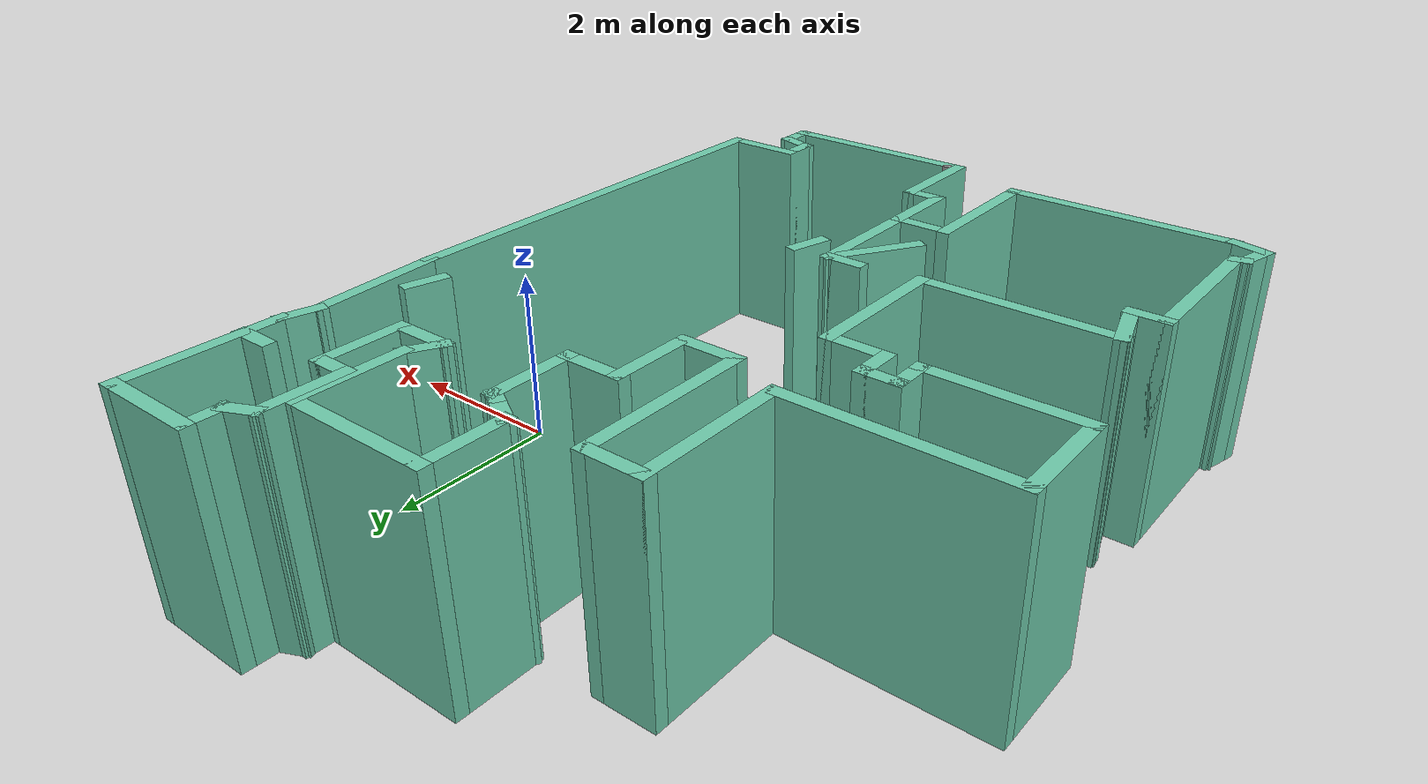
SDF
<?xml version='1.0'?>
<sdf version='1.6'>
  <model name='map_20'>
    <pose frame=''>-3.13956 -0.252237 0 0 -0 0</pose>
    <link name='Wall_102'>
      <collision name='Wall_102_Collision'>
        <geometry>
          <box>
            <size>1.5 0.15 2.5</size>
          </box>
        </geometry>
        <pose frame=''>0 0 1.25 0 -0 0</pose>
      </collision>
      <visual name='Wall_102_Visual'>
        <pose frame=''>0 0 1.25 0 -0 0</pose>
        <geometry>
          <box>
            <size>1.5 0.15 2.5</size>
          </box>
        </geometry>
        <material>
          <script>
            <uri>file://media/materials/scripts/gazebo.material</uri>
            <name>Gazebo/Grey</name>
          </script>
          <ambient>0.435294 0.796078 0.67451 1</ambient>
        </material>
        <meta>
          <layer>0</layer>
        </meta>
      </visual>
      <pose frame=''>0.194438 -1.98873 0 0 -0 1.5708</pose>
    </link>
    <link name='Wall_103'>
      <collision name='Wall_103_Collision'>
        <geometry>
          <box>
            <size>0.5 0.15 2.5</size>
          </box>
        </geometry>
        <pose frame=''>0 0 1.25 0 -0 0</pose>
      </collision>
      <visual name='Wall_103_Visual'>
        <pose frame=''>0 0 1.25 0 -0 0</pose>
        <geometry>
          <box>
            <size>0.5 0.15 2.5</size>
          </box>
        </geometry>
        <material>
          <script>
            <uri>file://media/materials/scripts/gazebo.material</uri>
            <name>Gazebo/Grey</name>
          </script>
          <ambient>0.435294 0.796078 0.67451 1</ambient>
        </material>
        <meta>
          <layer>0</layer>
        </meta>
      </visual>
      <pose frame=''>0.019438 -1.31373 0 0 -0 3.14159</pose>
    </link>
    <link name='Wall_105'>
      <collision name='Wall_105_Collision'>
        <geometry>
          <box>
            <size>1.15084 0.15 2.5</size>
          </box>
        </geometry>
        <pose frame=''>0 0 1.25 0 -0 0</pose>
      </collision>
      <visual name='Wall_105_Visual'>
        <pose frame=''>0 0 1.25 0 -0 0</pose>
        <geometry>
          <box>
            <size>1.15084 0.15 2.5</size>
          </box>
        </geometry>
        <material>
          <script>
            <uri>file://media/materials/scripts/gazebo.material</uri>
            <name>Gazebo/Grey</name>
          </script>
          <ambient>0.435294 0.796078 0.67451 1</ambient>
        </material>
        <meta>
          <layer>0</layer>
        </meta>
      </visual>
      <pose frame=''>-0.077294 -1.73395 0 0 -0 0.996783</pose>
    </link>
    <link name='Wall_107'>
      <collision name='Wall_107_Collision'>
        <geometry>
          <box>
            <size>0.5 0.15 2.5</size>
          </box>
        </geometry>
        <pose frame=''>0 0 1.25 0 -0 0</pose>
      </collision>
      <visual name='Wall_107_Visual'>
        <pose frame=''>0 0 1.25 0 -0 0</pose>
        <geometry>
          <box>
            <size>0.5 0.15 2.5</size>
          </box>
        </geometry>
        <material>
          <script>
            <uri>file://media/materials/scripts/gazebo.material</uri>
            <name>Gazebo/Grey</name>
          </script>
          <ambient>0.435294 0.796078 0.67451 1</ambient>
        </material>
        <meta>
          <layer>0</layer>
        </meta>
      </visual>
      <pose frame=''>2.99723 1.66149 0 0 -0 -1.8326</pose>
    </link>
    <link name='Wall_109'>
      <collision name='Wall_109_Collision'>
        <geometry>
          <box>
            <size>0.5 0.15 2.5</size>
          </box>
        </geometry>
        <pose frame=''>0 0 1.25 0 -0 0</pose>
      </collision>
      <visual name='Wall_109_Visual'>
        <pose frame=''>0 0 1.25 0 -0 0</pose>
        <geometry>
          <box>
            <size>0.5 0.15 2.5</size>
          </box>
        </geometry>
        <material>
          <script>
            <uri>file://media/materials/scripts/gazebo.material</uri>
            <name>Gazebo/Grey</name>
          </script>
          <ambient>0.435294 0.796078 0.67451 1</ambient>
        </material>
        <meta>
          <layer>0</layer>
        </meta>
      </visual>
      <pose frame=''>0.57259 -1.46289 0 0 -0 -1.8326</pose>
    </link>
    <link name='Wall_13'>
      <collision name='Wall_13_Collision'>
        <geometry>
          <box>
            <size>0.5 0.15 2.5</size>
          </box>
        </geometry>
        <pose frame=''>0 0 1.25 0 -0 0</pose>
      </collision>
      <visual name='Wall_13_Visual'>
        <pose frame=''>0 0 1.25 0 -0 0</pose>
        <geometry>
          <box>
            <size>0.5 0.15 2.5</size>
          </box>
        </geometry>
        <material>
          <script>
            <uri>file://media/materials/scripts/gazebo.material</uri>
            <name>Gazebo/Grey</name>
          </script>
          <ambient>0.435294 0.796078 0.67451 1</ambient>
        </material>
        <meta>
          <layer>0</layer>
        </meta>
      </visual>
      <pose frame=''>2.29233 4.43873 0 0 -0 -1.5708</pose>
    </link>
    <link name='Wall_16'>
      <collision name='Wall_16_Collision'>
        <geometry>
          <box>
            <size>0.444961 0.15 2.5</size>
          </box>
        </geometry>
        <pose frame=''>0 0 1.25 0 -0 0</pose>
      </collision>
      <visual name='Wall_16_Visual'>
        <pose frame=''>0 0 1.25 0 -0 0</pose>
        <geometry>
          <box>
            <size>0.444961 0.15 2.5</size>
          </box>
        </geometry>
        <material>
          <script>
            <uri>file://media/materials/scripts/gazebo.material</uri>
            <name>Gazebo/Grey</name>
          </script>
          <ambient>0.435294 0.796078 0.67451 1</ambient>
        </material>
        <meta>
          <layer>0</layer>
        </meta>
      </visual>
      <pose frame=''>2.15793 4.20299 0 0 -0 0.424452</pose>
    </link>
    <link name='Wall_18'>
      <collision name='Wall_18_Collision'>
        <geometry>
          <box>
            <size>1 0.15 2.5</size>
          </box>
        </geometry>
        <pose frame=''>0 0 1.25 0 -0 0</pose>
      </collision>
      <visual name='Wall_18_Visual'>
        <pose frame=''>0 0 1.25 0 -0 0</pose>
        <geometry>
          <box>
            <size>1 0.15 2.5</size>
          </box>
        </geometry>
        <material>
          <script>
            <uri>file://media/materials/scripts/gazebo.material</uri>
            <name>Gazebo/Grey</name>
          </script>
          <ambient>0.435294 0.796078 0.67451 1</ambient>
        </material>
        <meta>
          <layer>0</layer>
        </meta>
      </visual>
      <pose frame=''>2.02354 3.71726 0 0 -0 -1.5708</pose>
    </link>
    <link name='Wall_28'>
      <collision name='Wall_28_Collision'>
        <geometry>
          <box>
            <size>0.5 0.15 2.5</size>
          </box>
        </geometry>
        <pose frame=''>0 0 1.25 0 -0 0</pose>
      </collision>
      <visual name='Wall_28_Visual'>
        <pose frame=''>0 0 1.25 0 -0 0</pose>
        <geometry>
          <box>
            <size>0.5 0.15 2.5</size>
          </box>
        </geometry>
        <material>
          <script>
            <uri>file://media/materials/scripts/gazebo.material</uri>
            <name>Gazebo/Grey</name>
          </script>
          <ambient>0.435294 0.796078 0.67451 1</ambient>
        </material>
        <meta>
          <layer>0</layer>
        </meta>
      </visual>
      <pose frame=''>2.19854 3.29226 0 0 -0 0</pose>
    </link>
    <link name='Wall_39'>
      <collision name='Wall_39_Collision'>
        <geometry>
          <box>
            <size>1 0.15 2.5</size>
          </box>
        </geometry>
        <pose frame=''>0 0 1.25 0 -0 0</pose>
      </collision>
      <visual name='Wall_39_Visual'>
        <pose frame=''>0 0 1.25 0 -0 0</pose>
        <geometry>
          <box>
            <size>1 0.15 2.5</size>
          </box>
        </geometry>
        <material>
          <script>
            <uri>file://media/materials/scripts/gazebo.material</uri>
            <name>Gazebo/Grey</name>
          </script>
          <ambient>0.435294 0.796078 0.67451 1</ambient>
        </material>
        <meta>
          <layer>0</layer>
        </meta>
      </visual>
      <pose frame=''>2.37354 2.86726 0 0 -0 -1.5708</pose>
    </link>
    <link name='Wall_40'>
      <collision name='Wall_40_Collision'>
        <geometry>
          <box>
            <size>0.75 0.15 2.5</size>
          </box>
        </geometry>
        <pose frame=''>0 0 1.25 0 -0 0</pose>
      </collision>
      <visual name='Wall_40_Visual'>
        <pose frame=''>0 0 1.25 0 -0 0</pose>
        <geometry>
          <box>
            <size>0.75 0.15 2.5</size>
          </box>
        </geometry>
        <material>
          <script>
            <uri>file://media/materials/scripts/gazebo.material</uri>
            <name>Gazebo/Grey</name>
          </script>
          <ambient>0.435294 0.796078 0.67451 1</ambient>
        </material>
        <meta>
          <layer>0</layer>
        </meta>
      </visual>
      <pose frame=''>2.07354 2.44226 0 0 -0 3.14159</pose>
    </link>
    <link name='Wall_41'>
      <collision name='Wall_41_Collision'>
        <geometry>
          <box>
            <size>0.5 0.15 2.5</size>
          </box>
        </geometry>
        <pose frame=''>0 0 1.25 0 -0 0</pose>
      </collision>
      <visual name='Wall_41_Visual'>
        <pose frame=''>0 0 1.25 0 -0 0</pose>
        <geometry>
          <box>
            <size>0.5 0.15 2.5</size>
          </box>
        </geometry>
        <material>
          <script>
            <uri>file://media/materials/scripts/gazebo.material</uri>
            <name>Gazebo/Grey</name>
          </script>
          <ambient>0.435294 0.796078 0.67451 1</ambient>
        </material>
        <meta>
          <layer>0</layer>
        </meta>
      </visual>
      <pose frame=''>1.86104 2.59381 0 0 -0 1.0472</pose>
    </link>
    <link name='Wall_42'>
      <collision name='Wall_42_Collision'>
        <geometry>
          <box>
            <size>1.25 0.15 2.5</size>
          </box>
        </geometry>
        <pose frame=''>0 0 1.25 0 -0 0</pose>
      </collision>
      <visual name='Wall_42_Visual'>
        <pose frame=''>0 0 1.25 0 -0 0</pose>
        <geometry>
          <box>
            <size>1.25 0.15 2.5</size>
          </box>
        </geometry>
        <material>
          <script>
            <uri>file://media/materials/scripts/gazebo.material</uri>
            <name>Gazebo/Grey</name>
          </script>
          <ambient>0.435294 0.796078 0.67451 1</ambient>
        </material>
        <meta>
          <layer>0</layer>
        </meta>
      </visual>
      <pose frame=''>1.94854 3.29537 0 0 -0 1.5708</pose>
    </link>
    <link name='Wall_45'>
      <collision name='Wall_45_Collision'>
        <geometry>
          <box>
            <size>1.75 0.15 2.5</size>
          </box>
        </geometry>
        <pose frame=''>0 0 1.25 0 -0 0</pose>
      </collision>
      <visual name='Wall_45_Visual'>
        <pose frame=''>0 0 1.25 0 -0 0</pose>
        <geometry>
          <box>
            <size>1.75 0.15 2.5</size>
          </box>
        </geometry>
        <material>
          <script>
            <uri>file://media/materials/scripts/gazebo.material</uri>
            <name>Gazebo/Grey</name>
          </script>
          <ambient>0.435294 0.796078 0.67451 1</ambient>
        </material>
        <meta>
          <layer>0</layer>
        </meta>
      </visual>
      <pose frame=''>1.14854 3.84537 0 0 -0 3.14159</pose>
    </link>
    <link name='Wall_46'>
      <collision name='Wall_46_Collision'>
        <geometry>
          <box>
            <size>1 0.15 2.5</size>
          </box>
        </geometry>
        <pose frame=''>0 0 1.25 0 -0 0</pose>
      </collision>
      <visual name='Wall_46_Visual'>
        <pose frame=''>0 0 1.25 0 -0 0</pose>
        <geometry>
          <box>
            <size>1 0.15 2.5</size>
          </box>
        </geometry>
        <material>
          <script>
            <uri>file://media/materials/scripts/gazebo.material</uri>
            <name>Gazebo/Grey</name>
          </script>
          <ambient>0.435294 0.796078 0.67451 1</ambient>
        </material>
        <meta>
          <layer>0</layer>
        </meta>
      </visual>
      <pose frame=''>0.34854 3.42037 0 0 -0 -1.5708</pose>
    </link>
    <link name='Wall_47'>
      <collision name='Wall_47_Collision'>
        <geometry>
          <box>
            <size>0.5 0.15 2.5</size>
          </box>
        </geometry>
        <pose frame=''>0 0 1.25 0 -0 0</pose>
      </collision>
      <visual name='Wall_47_Visual'>
        <pose frame=''>0 0 1.25 0 -0 0</pose>
        <geometry>
          <box>
            <size>0.5 0.15 2.5</size>
          </box>
        </geometry>
        <material>
          <script>
            <uri>file://media/materials/scripts/gazebo.material</uri>
            <name>Gazebo/Grey</name>
          </script>
          <ambient>0.435294 0.796078 0.67451 1</ambient>
        </material>
        <meta>
          <layer>0</layer>
        </meta>
      </visual>
      <pose frame=''>0.500094 2.90787 0 0 -0 -0.523599</pose>
    </link>
    <link name='Wall_48'>
      <collision name='Wall_48_Collision'>
        <geometry>
          <box>
            <size>0.25 0.15 2.5</size>
          </box>
        </geometry>
        <pose frame=''>0 0 1.25 0 -0 0</pose>
      </collision>
      <visual name='Wall_48_Visual'>
        <pose frame=''>0 0 1.25 0 -0 0</pose>
        <geometry>
          <box>
            <size>0.25 0.15 2.5</size>
          </box>
        </geometry>
        <material>
          <script>
            <uri>file://media/materials/scripts/gazebo.material</uri>
            <name>Gazebo/Grey</name>
          </script>
          <ambient>0.435294 0.796078 0.67451 1</ambient>
        </material>
        <meta>
          <layer>0</layer>
        </meta>
      </visual>
      <pose frame=''>0.69495 2.79537 0 0 -0 -0.523599</pose>
    </link>
    <link name='Wall_49'>
      <collision name='Wall_49_Collision'>
        <geometry>
          <box>
            <size>1 0.15 2.5</size>
          </box>
        </geometry>
        <pose frame=''>0 0 1.25 0 -0 0</pose>
      </collision>
      <visual name='Wall_49_Visual'>
        <pose frame=''>0 0 1.25 0 -0 0</pose>
        <geometry>
          <box>
            <size>1 0.15 2.5</size>
          </box>
        </geometry>
        <material>
          <script>
            <uri>file://media/materials/scripts/gazebo.material</uri>
            <name>Gazebo/Grey</name>
          </script>
          <ambient>0.435294 0.796078 0.67451 1</ambient>
        </material>
        <meta>
          <layer>0</layer>
        </meta>
      </visual>
      <pose frame=''>0.738251 2.34537 0 0 -0 -1.5708</pose>
    </link>
    <link name='Wall_52'>
      <collision name='Wall_52_Collision'>
        <geometry>
          <box>
            <size>0.75 0.15 2.5</size>
          </box>
        </geometry>
        <pose frame=''>0 0 1.25 0 -0 0</pose>
      </collision>
      <visual name='Wall_52_Visual'>
        <pose frame=''>0 0 1.25 0 -0 0</pose>
        <geometry>
          <box>
            <size>0.75 0.15 2.5</size>
          </box>
        </geometry>
        <material>
          <script>
            <uri>file://media/materials/scripts/gazebo.material</uri>
            <name>Gazebo/Grey</name>
          </script>
          <ambient>0.435294 0.796078 0.67451 1</ambient>
        </material>
        <meta>
          <layer>0</layer>
        </meta>
      </visual>
      <pose frame=''>0.438252 1.92037 0 0 -0 3.14159</pose>
    </link>
    <link name='Wall_53'>
      <collision name='Wall_53_Collision'>
        <geometry>
          <box>
            <size>1 0.15 2.5</size>
          </box>
        </geometry>
        <pose frame=''>0 0 1.25 0 -0 0</pose>
      </collision>
      <visual name='Wall_53_Visual'>
        <pose frame=''>0 0 1.25 0 -0 0</pose>
        <geometry>
          <box>
            <size>1 0.15 2.5</size>
          </box>
        </geometry>
        <material>
          <script>
            <uri>file://media/materials/scripts/gazebo.material</uri>
            <name>Gazebo/Grey</name>
          </script>
          <ambient>0.435294 0.796078 0.67451 1</ambient>
        </material>
        <meta>
          <layer>0</layer>
        </meta>
      </visual>
      <pose frame=''>0.138252 1.49537 0 0 -0 -1.5708</pose>
    </link>
    <link name='Wall_54'>
      <collision name='Wall_54_Collision'>
        <geometry>
          <box>
            <size>0.75 0.15 2.5</size>
          </box>
        </geometry>
        <pose frame=''>0 0 1.25 0 -0 0</pose>
      </collision>
      <visual name='Wall_54_Visual'>
        <pose frame=''>0 0 1.25 0 -0 0</pose>
        <geometry>
          <box>
            <size>0.75 0.15 2.5</size>
          </box>
        </geometry>
        <material>
          <script>
            <uri>file://media/materials/scripts/gazebo.material</uri>
            <name>Gazebo/Grey</name>
          </script>
          <ambient>0.435294 0.796078 0.67451 1</ambient>
        </material>
        <meta>
          <layer>0</layer>
        </meta>
      </visual>
      <pose frame=''>-0.161749 1.07037 0 0 -0 3.14159</pose>
    </link>
    <link name='Wall_57'>
      <collision name='Wall_57_Collision'>
        <geometry>
          <box>
            <size>2 0.15 2.5</size>
          </box>
        </geometry>
        <pose frame=''>0 0 1.25 0 -0 0</pose>
      </collision>
      <visual name='Wall_57_Visual'>
        <pose frame=''>0 0 1.25 0 -0 0</pose>
        <geometry>
          <box>
            <size>2 0.15 2.5</size>
          </box>
        </geometry>
        <material>
          <script>
            <uri>file://media/materials/scripts/gazebo.material</uri>
            <name>Gazebo/Grey</name>
          </script>
          <ambient>0.435294 0.796078 0.67451 1</ambient>
        </material>
        <meta>
          <layer>0</layer>
        </meta>
      </visual>
      <pose frame=''>-0.461749 1.99537 0 0 -0 1.5708</pose>
    </link>
    <link name='Wall_58'>
      <collision name='Wall_58_Collision'>
        <geometry>
          <box>
            <size>0.75 0.15 2.5</size>
          </box>
        </geometry>
        <pose frame=''>0 0 1.25 0 -0 0</pose>
      </collision>
      <visual name='Wall_58_Visual'>
        <pose frame=''>0 0 1.25 0 -0 0</pose>
        <geometry>
          <box>
            <size>0.75 0.15 2.5</size>
          </box>
        </geometry>
        <material>
          <script>
            <uri>file://media/materials/scripts/gazebo.material</uri>
            <name>Gazebo/Grey</name>
          </script>
          <ambient>0.435294 0.796078 0.67451 1</ambient>
        </material>
        <meta>
          <layer>0</layer>
        </meta>
      </visual>
      <pose frame=''>-0.761749 2.92037 0 0 -0 3.14159</pose>
    </link>
    <link name='Wall_59'>
      <collision name='Wall_59_Collision'>
        <geometry>
          <box>
            <size>1.75 0.15 2.5</size>
          </box>
        </geometry>
        <pose frame=''>0 0 1.25 0 -0 0</pose>
      </collision>
      <visual name='Wall_59_Visual'>
        <pose frame=''>0 0 1.25 0 -0 0</pose>
        <geometry>
          <box>
            <size>1.75 0.15 2.5</size>
          </box>
        </geometry>
        <material>
          <script>
            <uri>file://media/materials/scripts/gazebo.material</uri>
            <name>Gazebo/Grey</name>
          </script>
          <ambient>0.435294 0.796078 0.67451 1</ambient>
        </material>
        <meta>
          <layer>0</layer>
        </meta>
      </visual>
      <pose frame=''>-1.06175 2.12037 0 0 -0 -1.5708</pose>
    </link>
    <link name='Wall_60'>
      <collision name='Wall_60_Collision'>
        <geometry>
          <box>
            <size>2.5 0.15 2.5</size>
          </box>
        </geometry>
        <pose frame=''>0 0 1.25 0 -0 0</pose>
      </collision>
      <visual name='Wall_60_Visual'>
        <pose frame=''>0 0 1.25 0 -0 0</pose>
        <geometry>
          <box>
            <size>2.5 0.15 2.5</size>
          </box>
        </geometry>
        <material>
          <script>
            <uri>file://media/materials/scripts/gazebo.material</uri>
            <name>Gazebo/Grey</name>
          </script>
          <ambient>0.435294 0.796078 0.67451 1</ambient>
        </material>
        <meta>
          <layer>0</layer>
        </meta>
      </visual>
      <pose frame=''>-2.23675 1.32037 0 0 -0 3.14159</pose>
    </link>
    <link name='Wall_61'>
      <collision name='Wall_61_Collision'>
        <geometry>
          <box>
            <size>1.25 0.15 2.5</size>
          </box>
        </geometry>
        <pose frame=''>0 0 1.25 0 -0 0</pose>
      </collision>
      <visual name='Wall_61_Visual'>
        <pose frame=''>0 0 1.25 0 -0 0</pose>
        <geometry>
          <box>
            <size>1.25 0.15 2.5</size>
          </box>
        </geometry>
        <material>
          <script>
            <uri>file://media/materials/scripts/gazebo.material</uri>
            <name>Gazebo/Grey</name>
          </script>
          <ambient>0.435294 0.796078 0.67451 1</ambient>
        </material>
        <meta>
          <layer>0</layer>
        </meta>
      </visual>
      <pose frame=''>-3.41175 0.770368 0 0 -0 -1.5708</pose>
    </link>
    <link name='Wall_62'>
      <collision name='Wall_62_Collision'>
        <geometry>
          <box>
            <size>1.75 0.15 2.5</size>
          </box>
        </geometry>
        <pose frame=''>0 0 1.25 0 -0 0</pose>
      </collision>
      <visual name='Wall_62_Visual'>
        <pose frame=''>0 0 1.25 0 -0 0</pose>
        <geometry>
          <box>
            <size>1.75 0.15 2.5</size>
          </box>
        </geometry>
        <material>
          <script>
            <uri>file://media/materials/scripts/gazebo.material</uri>
            <name>Gazebo/Grey</name>
          </script>
          <ambient>0.435294 0.796078 0.67451 1</ambient>
        </material>
        <meta>
          <layer>0</layer>
        </meta>
      </visual>
      <pose frame=''>-2.61175 0.220368 0 0 -0 0</pose>
    </link>
    <link name='Wall_63'>
      <collision name='Wall_63_Collision'>
        <geometry>
          <box>
            <size>0.5 0.15 2.5</size>
          </box>
        </geometry>
        <pose frame=''>0 0 1.25 0 -0 0</pose>
      </collision>
      <visual name='Wall_63_Visual'>
        <pose frame=''>0 0 1.25 0 -0 0</pose>
        <geometry>
          <box>
            <size>0.5 0.15 2.5</size>
          </box>
        </geometry>
        <material>
          <script>
            <uri>file://media/materials/scripts/gazebo.material</uri>
            <name>Gazebo/Grey</name>
          </script>
          <ambient>0.435294 0.796078 0.67451 1</ambient>
        </material>
        <meta>
          <layer>0</layer>
        </meta>
      </visual>
      <pose frame=''>-1.81175 0.395368 0 0 -0 1.5708</pose>
    </link>
    <link name='Wall_64'>
      <collision name='Wall_64_Collision'>
        <geometry>
          <box>
            <size>0.5 0.15 2.5</size>
          </box>
        </geometry>
        <pose frame=''>0 0 1.25 0 -0 0</pose>
      </collision>
      <visual name='Wall_64_Visual'>
        <pose frame=''>0 0 1.25 0 -0 0</pose>
        <geometry>
          <box>
            <size>0.5 0.15 2.5</size>
          </box>
        </geometry>
        <material>
          <script>
            <uri>file://media/materials/scripts/gazebo.material</uri>
            <name>Gazebo/Grey</name>
          </script>
          <ambient>0.435294 0.796078 0.67451 1</ambient>
        </material>
        <meta>
          <layer>0</layer>
        </meta>
      </visual>
      <pose frame=''>-1.63675 0.570368 0 0 -0 0</pose>
    </link>
    <link name='Wall_65'>
      <collision name='Wall_65_Collision'>
        <geometry>
          <box>
            <size>0.5 0.15 2.5</size>
          </box>
        </geometry>
        <pose frame=''>0 0 1.25 0 -0 0</pose>
      </collision>
      <visual name='Wall_65_Visual'>
        <pose frame=''>0 0 1.25 0 -0 0</pose>
        <geometry>
          <box>
            <size>0.5 0.15 2.5</size>
          </box>
        </geometry>
        <material>
          <script>
            <uri>file://media/materials/scripts/gazebo.material</uri>
            <name>Gazebo/Grey</name>
          </script>
          <ambient>0.435294 0.796078 0.67451 1</ambient>
        </material>
        <meta>
          <layer>0</layer>
        </meta>
      </visual>
      <pose frame=''>-1.46175 0.395368 0 0 -0 -1.5708</pose>
    </link>
    <link name='Wall_66'>
      <collision name='Wall_66_Collision'>
        <geometry>
          <box>
            <size>0.75 0.15 2.5</size>
          </box>
        </geometry>
        <pose frame=''>0 0 1.25 0 -0 0</pose>
      </collision>
      <visual name='Wall_66_Visual'>
        <pose frame=''>0 0 1.25 0 -0 0</pose>
        <geometry>
          <box>
            <size>0.75 0.15 2.5</size>
          </box>
        </geometry>
        <material>
          <script>
            <uri>file://media/materials/scripts/gazebo.material</uri>
            <name>Gazebo/Grey</name>
          </script>
          <ambient>0.435294 0.796078 0.67451 1</ambient>
        </material>
        <meta>
          <layer>0</layer>
        </meta>
      </visual>
      <pose frame=''>-1.16175 0.220368 0 0 -0 0</pose>
    </link>
    <link name='Wall_67'>
      <collision name='Wall_67_Collision'>
        <geometry>
          <box>
            <size>1.75 0.15 2.5</size>
          </box>
        </geometry>
        <pose frame=''>0 0 1.25 0 -0 0</pose>
      </collision>
      <visual name='Wall_67_Visual'>
        <pose frame=''>0 0 1.25 0 -0 0</pose>
        <geometry>
          <box>
            <size>1.75 0.15 2.5</size>
          </box>
        </geometry>
        <material>
          <script>
            <uri>file://media/materials/scripts/gazebo.material</uri>
            <name>Gazebo/Grey</name>
          </script>
          <ambient>0.435294 0.796078 0.67451 1</ambient>
        </material>
        <meta>
          <layer>0</layer>
        </meta>
      </visual>
      <pose frame=''>-0.861749 -0.579632 0 0 -0 -1.5708</pose>
    </link>
    <link name='Wall_68'>
      <collision name='Wall_68_Collision'>
        <geometry>
          <box>
            <size>2.25 0.15 2.5</size>
          </box>
        </geometry>
        <pose frame=''>0 0 1.25 0 -0 0</pose>
      </collision>
      <visual name='Wall_68_Visual'>
        <pose frame=''>0 0 1.25 0 -0 0</pose>
        <geometry>
          <box>
            <size>2.25 0.15 2.5</size>
          </box>
        </geometry>
        <material>
          <script>
            <uri>file://media/materials/scripts/gazebo.material</uri>
            <name>Gazebo/Grey</name>
          </script>
          <ambient>0.435294 0.796078 0.67451 1</ambient>
        </material>
        <meta>
          <layer>0</layer>
        </meta>
      </visual>
      <pose frame=''>-1.91175 -1.37963 0 0 -0 3.14159</pose>
    </link>
    <link name='Wall_69'>
      <collision name='Wall_69_Collision'>
        <geometry>
          <box>
            <size>0.75 0.15 2.5</size>
          </box>
        </geometry>
        <pose frame=''>0 0 1.25 0 -0 0</pose>
      </collision>
      <visual name='Wall_69_Visual'>
        <pose frame=''>0 0 1.25 0 -0 0</pose>
        <geometry>
          <box>
            <size>0.75 0.15 2.5</size>
          </box>
        </geometry>
        <material>
          <script>
            <uri>file://media/materials/scripts/gazebo.material</uri>
            <name>Gazebo/Grey</name>
          </script>
          <ambient>0.435294 0.796078 0.67451 1</ambient>
        </material>
        <meta>
          <layer>0</layer>
        </meta>
      </visual>
      <pose frame=''>-2.8841 -1.66941 0 0 -0 -1.309</pose>
    </link>
    <link name='Wall_70'>
      <collision name='Wall_70_Collision'>
        <geometry>
          <box>
            <size>0.5 0.15 2.5</size>
          </box>
        </geometry>
        <pose frame=''>0 0 1.25 0 -0 0</pose>
      </collision>
      <visual name='Wall_70_Visual'>
        <pose frame=''>0 0 1.25 0 -0 0</pose>
        <geometry>
          <box>
            <size>0.5 0.15 2.5</size>
          </box>
        </geometry>
        <material>
          <script>
            <uri>file://media/materials/scripts/gazebo.material</uri>
            <name>Gazebo/Grey</name>
          </script>
          <ambient>0.435294 0.796078 0.67451 1</ambient>
        </material>
        <meta>
          <layer>0</layer>
        </meta>
      </visual>
      <pose frame=''>-2.98146 -1.95919 0 0 -0 3.14159</pose>
    </link>
    <link name='Wall_71'>
      <collision name='Wall_71_Collision'>
        <geometry>
          <box>
            <size>2 0.15 2.5</size>
          </box>
        </geometry>
        <pose frame=''>0 0 1.25 0 -0 0</pose>
      </collision>
      <visual name='Wall_71_Visual'>
        <pose frame=''>0 0 1.25 0 -0 0</pose>
        <geometry>
          <box>
            <size>2 0.15 2.5</size>
          </box>
        </geometry>
        <material>
          <script>
            <uri>file://media/materials/scripts/gazebo.material</uri>
            <name>Gazebo/Grey</name>
          </script>
          <ambient>0.435294 0.796078 0.67451 1</ambient>
        </material>
        <meta>
          <layer>0</layer>
        </meta>
      </visual>
      <pose frame=''>-3.15646 -2.88419 0 0 -0 -1.5708</pose>
    </link>
    <link name='Wall_72'>
      <collision name='Wall_72_Collision'>
        <geometry>
          <box>
            <size>0.25 0.15 2.5</size>
          </box>
        </geometry>
        <pose frame=''>0 0 1.25 0 -0 0</pose>
      </collision>
      <visual name='Wall_72_Visual'>
        <pose frame=''>0 0 1.25 0 -0 0</pose>
        <geometry>
          <box>
            <size>0.25 0.15 2.5</size>
          </box>
        </geometry>
        <material>
          <script>
            <uri>file://media/materials/scripts/gazebo.material</uri>
            <name>Gazebo/Grey</name>
          </script>
          <ambient>0.435294 0.796078 0.67451 1</ambient>
        </material>
        <meta>
          <layer>0</layer>
        </meta>
      </visual>
      <pose frame=''>-3.20475 -3.82213 0 0 -0 -2.87979</pose>
    </link>
    <link name='Wall_73'>
      <collision name='Wall_73_Collision'>
        <geometry>
          <box>
            <size>0.5 0.15 2.5</size>
          </box>
        </geometry>
        <pose frame=''>0 0 1.25 0 -0 0</pose>
      </collision>
      <visual name='Wall_73_Visual'>
        <pose frame=''>0 0 1.25 0 -0 0</pose>
        <geometry>
          <box>
            <size>0.5 0.15 2.5</size>
          </box>
        </geometry>
        <material>
          <script>
            <uri>file://media/materials/scripts/gazebo.material</uri>
            <name>Gazebo/Grey</name>
          </script>
          <ambient>0.435294 0.796078 0.67451 1</ambient>
        </material>
        <meta>
          <layer>0</layer>
        </meta>
      </visual>
      <pose frame=''>-3.29834 -4.00411 0 0 -0 -1.8326</pose>
    </link>
    <link name='Wall_74'>
      <collision name='Wall_74_Collision'>
        <geometry>
          <box>
            <size>0.5 0.15 2.5</size>
          </box>
        </geometry>
        <pose frame=''>0 0 1.25 0 -0 0</pose>
      </collision>
      <visual name='Wall_74_Visual'>
        <pose frame=''>0 0 1.25 0 -0 0</pose>
        <geometry>
          <box>
            <size>0.5 0.15 2.5</size>
          </box>
        </geometry>
        <material>
          <script>
            <uri>file://media/materials/scripts/gazebo.material</uri>
            <name>Gazebo/Grey</name>
          </script>
          <ambient>0.435294 0.796078 0.67451 1</ambient>
        </material>
        <meta>
          <layer>0</layer>
        </meta>
      </visual>
      <pose frame=''>-3.1746 -4.21844 0 0 -0 -0.261799</pose>
    </link>
    <link name='Wall_75'>
      <collision name='Wall_75_Collision'>
        <geometry>
          <box>
            <size>2.75 0.15 2.5</size>
          </box>
        </geometry>
        <pose frame=''>0 0 1.25 0 -0 0</pose>
      </collision>
      <visual name='Wall_75_Visual'>
        <pose frame=''>0 0 1.25 0 -0 0</pose>
        <geometry>
          <box>
            <size>2.75 0.15 2.5</size>
          </box>
        </geometry>
        <material>
          <script>
            <uri>file://media/materials/scripts/gazebo.material</uri>
            <name>Gazebo/Grey</name>
          </script>
          <ambient>0.435294 0.796078 0.67451 1</ambient>
        </material>
        <meta>
          <layer>0</layer>
        </meta>
      </visual>
      <pose frame=''>-1.70556 -4.26373 0 0 -0 0</pose>
    </link>
    <link name='Wall_76'>
      <collision name='Wall_76_Collision'>
        <geometry>
          <box>
            <size>1.75 0.15 2.5</size>
          </box>
        </geometry>
        <pose frame=''>0 0 1.25 0 -0 0</pose>
      </collision>
      <visual name='Wall_76_Visual'>
        <pose frame=''>0 0 1.25 0 -0 0</pose>
        <geometry>
          <box>
            <size>1.75 0.15 2.5</size>
          </box>
        </geometry>
        <material>
          <script>
            <uri>file://media/materials/scripts/gazebo.material</uri>
            <name>Gazebo/Grey</name>
          </script>
          <ambient>0.435294 0.796078 0.67451 1</ambient>
        </material>
        <meta>
          <layer>0</layer>
        </meta>
      </visual>
      <pose frame=''>-0.405562 -3.46373 0 0 -0 1.5708</pose>
    </link>
    <link name='Wall_77'>
      <collision name='Wall_77_Collision'>
        <geometry>
          <box>
            <size>0.75 0.15 2.5</size>
          </box>
        </geometry>
        <pose frame=''>0 0 1.25 0 -0 0</pose>
      </collision>
      <visual name='Wall_77_Visual'>
        <pose frame=''>0 0 1.25 0 -0 0</pose>
        <geometry>
          <box>
            <size>0.75 0.15 2.5</size>
          </box>
        </geometry>
        <material>
          <script>
            <uri>file://media/materials/scripts/gazebo.material</uri>
            <name>Gazebo/Grey</name>
          </script>
          <ambient>0.435294 0.796078 0.67451 1</ambient>
        </material>
        <meta>
          <layer>0</layer>
        </meta>
      </visual>
      <pose frame=''>-0.105562 -2.66373 0 0 -0 0</pose>
    </link>
    <link name='Wall_78'>
      <collision name='Wall_78_Collision'>
        <geometry>
          <box>
            <size>1 0.15 2.5</size>
          </box>
        </geometry>
        <pose frame=''>0 0 1.25 0 -0 0</pose>
      </collision>
      <visual name='Wall_78_Visual'>
        <pose frame=''>0 0 1.25 0 -0 0</pose>
        <geometry>
          <box>
            <size>1 0.15 2.5</size>
          </box>
        </geometry>
        <material>
          <script>
            <uri>file://media/materials/scripts/gazebo.material</uri>
            <name>Gazebo/Grey</name>
          </script>
          <ambient>0.435294 0.796078 0.67451 1</ambient>
        </material>
        <meta>
          <layer>0</layer>
        </meta>
      </visual>
      <pose frame=''>0.194438 -3.08873 0 0 -0 -1.5708</pose>
    </link>
    <link name='Wall_79'>
      <collision name='Wall_79_Collision'>
        <geometry>
          <box>
            <size>0.5 0.15 2.5</size>
          </box>
        </geometry>
        <pose frame=''>0 0 1.25 0 -0 0</pose>
      </collision>
      <visual name='Wall_79_Visual'>
        <pose frame=''>0 0 1.25 0 -0 0</pose>
        <geometry>
          <box>
            <size>0.5 0.15 2.5</size>
          </box>
        </geometry>
        <material>
          <script>
            <uri>file://media/materials/scripts/gazebo.material</uri>
            <name>Gazebo/Grey</name>
          </script>
          <ambient>0.435294 0.796078 0.67451 1</ambient>
        </material>
        <meta>
          <layer>0</layer>
        </meta>
      </visual>
      <pose frame=''>0.369438 -3.51373 0 0 -0 0</pose>
    </link>
    <link name='Wall_80'>
      <collision name='Wall_80_Collision'>
        <geometry>
          <box>
            <size>1.25 0.15 2.5</size>
          </box>
        </geometry>
        <pose frame=''>0 0 1.25 0 -0 0</pose>
      </collision>
      <visual name='Wall_80_Visual'>
        <pose frame=''>0 0 1.25 0 -0 0</pose>
        <geometry>
          <box>
            <size>1.25 0.15 2.5</size>
          </box>
        </geometry>
        <material>
          <script>
            <uri>file://media/materials/scripts/gazebo.material</uri>
            <name>Gazebo/Grey</name>
          </script>
          <ambient>0.435294 0.796078 0.67451 1</ambient>
        </material>
        <meta>
          <layer>0</layer>
        </meta>
      </visual>
      <pose frame=''>0.544438 -4.06373 0 0 -0 -1.5708</pose>
    </link>
    <link name='Wall_81'>
      <collision name='Wall_81_Collision'>
        <geometry>
          <box>
            <size>0.25 0.15 2.5</size>
          </box>
        </geometry>
        <pose frame=''>0 0 1.25 0 -0 0</pose>
      </collision>
      <visual name='Wall_81_Visual'>
        <pose frame=''>0 0 1.25 0 -0 0</pose>
        <geometry>
          <box>
            <size>0.25 0.15 2.5</size>
          </box>
        </geometry>
        <material>
          <script>
            <uri>file://media/materials/scripts/gazebo.material</uri>
            <name>Gazebo/Grey</name>
          </script>
          <ambient>1 1 1 1</ambient>
        </material>
        <meta>
          <layer>0</layer>
        </meta>
      </visual>
      <pose frame=''>0.594438 -4.61373 0 0 -0 0</pose>
    </link>
    <link name='Wall_85'>
      <collision name='Wall_85_Collision'>
        <geometry>
          <box>
            <size>2.5 0.15 2.5</size>
          </box>
        </geometry>
        <pose frame=''>0 0 1.25 0 -0 0</pose>
      </collision>
      <visual name='Wall_85_Visual'>
        <pose frame=''>0 0 1.25 0 -0 0</pose>
        <geometry>
          <box>
            <size>2.5 0.15 2.5</size>
          </box>
        </geometry>
        <material>
          <script>
            <uri>file://media/materials/scripts/gazebo.material</uri>
            <name>Gazebo/Grey</name>
          </script>
          <ambient>0.435294 0.796078 0.67451 1</ambient>
        </material>
        <meta>
          <layer>0</layer>
        </meta>
      </visual>
      <pose frame=''>1.71944 -4.61373 0 0 -0 0</pose>
    </link>
    <link name='Wall_86'>
      <collision name='Wall_86_Collision'>
        <geometry>
          <box>
            <size>0.5 0.15 2.5</size>
          </box>
        </geometry>
        <pose frame=''>0 0 1.25 0 -0 0</pose>
      </collision>
      <visual name='Wall_86_Visual'>
        <pose frame=''>0 0 1.25 0 -0 0</pose>
        <geometry>
          <box>
            <size>0.5 0.15 2.5</size>
          </box>
        </geometry>
        <material>
          <script>
            <uri>file://media/materials/scripts/gazebo.material</uri>
            <name>Gazebo/Grey</name>
          </script>
          <ambient>0.435294 0.796078 0.67451 1</ambient>
        </material>
        <meta>
          <layer>0</layer>
        </meta>
      </visual>
      <pose frame=''>2.89444 -4.43873 0 0 -0 1.5708</pose>
    </link>
    <link name='Wall_87'>
      <collision name='Wall_87_Collision'>
        <geometry>
          <box>
            <size>0.5 0.15 2.5</size>
          </box>
        </geometry>
        <pose frame=''>0 0 1.25 0 -0 0</pose>
      </collision>
      <visual name='Wall_87_Visual'>
        <pose frame=''>0 0 1.25 0 -0 0</pose>
        <geometry>
          <box>
            <size>0.5 0.15 2.5</size>
          </box>
        </geometry>
        <material>
          <script>
            <uri>file://media/materials/scripts/gazebo.material</uri>
            <name>Gazebo/Grey</name>
          </script>
          <ambient>0.435294 0.796078 0.67451 1</ambient>
        </material>
        <meta>
          <layer>0</layer>
        </meta>
      </visual>
      <pose frame=''>2.7254 -4.21844 0 0 -0 2.87979</pose>
    </link>
    <link name='Wall_88'>
      <collision name='Wall_88_Collision'>
        <geometry>
          <box>
            <size>0.5 0.15 2.5</size>
          </box>
        </geometry>
        <pose frame=''>0 0 1.25 0 -0 0</pose>
      </collision>
      <visual name='Wall_88_Visual'>
        <pose frame=''>0 0 1.25 0 -0 0</pose>
        <geometry>
          <box>
            <size>0.5 0.15 2.5</size>
          </box>
        </geometry>
        <material>
          <script>
            <uri>file://media/materials/scripts/gazebo.material</uri>
            <name>Gazebo/Grey</name>
          </script>
          <ambient>0.435294 0.796078 0.67451 1</ambient>
        </material>
        <meta>
          <layer>0</layer>
        </meta>
      </visual>
      <pose frame=''>2.55636 -3.99814 0 0 -0 1.5708</pose>
    </link>
    <link name='Wall_89'>
      <collision name='Wall_89_Collision'>
        <geometry>
          <box>
            <size>1 0.15 2.5</size>
          </box>
        </geometry>
        <pose frame=''>0 0 1.25 0 -0 0</pose>
      </collision>
      <visual name='Wall_89_Visual'>
        <pose frame=''>0 0 1.25 0 -0 0</pose>
        <geometry>
          <box>
            <size>1 0.15 2.5</size>
          </box>
        </geometry>
        <material>
          <script>
            <uri>file://media/materials/scripts/gazebo.material</uri>
            <name>Gazebo/Grey</name>
          </script>
          <ambient>0.435294 0.796078 0.67451 1</ambient>
        </material>
        <meta>
          <layer>0</layer>
        </meta>
      </visual>
      <pose frame=''>2.98136 -3.82314 0 0 -0 0</pose>
    </link>
    <link name='Wall_9'>
      <collision name='Wall_9_Collision'>
        <geometry>
          <box>
            <size>1.25 0.15 2.5</size>
          </box>
        </geometry>
        <pose frame=''>0 0 1.25 0 -0 0</pose>
      </collision>
      <visual name='Wall_9_Visual'>
        <pose frame=''>0 0 1.25 0 -0 0</pose>
        <geometry>
          <box>
            <size>1.25 0.15 2.5</size>
          </box>
        </geometry>
        <material>
          <script>
            <uri>file://media/materials/scripts/gazebo.material</uri>
            <name>Gazebo/Grey</name>
          </script>
          <ambient>0.435294 0.796078 0.67451 1</ambient>
        </material>
        <meta>
          <layer>0</layer>
        </meta>
      </visual>
      <pose frame=''>2.84233 4.61373 0 0 -0 3.14159</pose>
    </link>
    <link name='Wall_90'>
      <collision name='Wall_90_Collision'>
        <geometry>
          <box>
            <size>5.25 0.15 2.5</size>
          </box>
        </geometry>
        <pose frame=''>0 0 1.25 0 -0 0</pose>
      </collision>
      <visual name='Wall_90_Visual'>
        <pose frame=''>0 0 1.25 0 -0 0</pose>
        <geometry>
          <box>
            <size>5.25 0.15 2.5</size>
          </box>
        </geometry>
        <material>
          <script>
            <uri>file://media/materials/scripts/gazebo.material</uri>
            <name>Gazebo/Grey</name>
          </script>
          <ambient>0.435294 0.796078 0.67451 1</ambient>
        </material>
        <meta>
          <layer>0</layer>
        </meta>
      </visual>
      <pose frame=''>3.40636 -1.27314 0 0 -0 1.5708</pose>
    </link>
    <link name='Wall_94'>
      <collision name='Wall_94_Collision'>
        <geometry>
          <box>
            <size>1.75 0.15 2.5</size>
          </box>
        </geometry>
        <pose frame=''>0 0 1.25 0 -0 0</pose>
      </collision>
      <visual name='Wall_94_Visual'>
        <pose frame=''>0 0 1.25 0 -0 0</pose>
        <geometry>
          <box>
            <size>1.75 0.15 2.5</size>
          </box>
        </geometry>
        <material>
          <script>
            <uri>file://media/materials/scripts/gazebo.material</uri>
            <name>Gazebo/Grey</name>
          </script>
          <ambient>0.435294 0.796078 0.67451 1</ambient>
        </material>
        <meta>
          <layer>0</layer>
        </meta>
      </visual>
      <pose frame=''>3.39233 3.81373 0 0 -0 -1.5708</pose>
    </link>
    <link name='Wall_95'>
      <collision name='Wall_95_Collision'>
        <geometry>
          <box>
            <size>0.15 0.15 2.5</size>
          </box>
        </geometry>
        <pose frame=''>0 0 1.25 0 -0 0</pose>
      </collision>
      <visual name='Wall_95_Visual'>
        <pose frame=''>0 0 1.25 0 -0 0</pose>
        <geometry>
          <box>
            <size>0.15 0.15 2.5</size>
          </box>
        </geometry>
        <material>
          <script>
            <uri>file://media/materials/scripts/gazebo.material</uri>
            <name>Gazebo/Grey</name>
          </script>
          <ambient>1 1 1 1</ambient>
        </material>
        <meta>
          <layer>0</layer>
        </meta>
      </visual>
      <pose frame=''>3.39233 3.01373 0 0 -0 0</pose>
    </link>
    <link name='Wall_96'>
      <collision name='Wall_96_Collision'>
        <geometry>
          <box>
            <size>0.5 0.15 2.5</size>
          </box>
        </geometry>
        <pose frame=''>0 0 1.25 0 -0 0</pose>
      </collision>
      <visual name='Wall_96_Visual'>
        <pose frame=''>0 0 1.25 0 -0 0</pose>
        <geometry>
          <box>
            <size>0.5 0.15 2.5</size>
          </box>
        </geometry>
        <material>
          <script>
            <uri>file://media/materials/scripts/gazebo.material</uri>
            <name>Gazebo/Grey</name>
          </script>
          <ambient>0.435294 0.796078 0.67451 1</ambient>
        </material>
        <meta>
          <layer>0</layer>
        </meta>
      </visual>
      <pose frame=''>3.34703 2.84469 0 0 -0 -1.8326</pose>
    </link>
    <link name='Wall_97'>
      <collision name='Wall_97_Collision'>
        <geometry>
          <box>
            <size>1.55271 0.15 2.5</size>
          </box>
        </geometry>
        <pose frame=''>0 0 1.25 0 -0 0</pose>
      </collision>
      <visual name='Wall_97_Visual'>
        <pose frame=''>0 0 1.25 0 -0 0</pose>
        <geometry>
          <box>
            <size>1.55271 0.15 2.5</size>
          </box>
        </geometry>
        <material>
          <script>
            <uri>file://media/materials/scripts/gazebo.material</uri>
            <name>Gazebo/Grey</name>
          </script>
          <ambient>0.435294 0.796078 0.67451 1</ambient>
        </material>
        <meta>
          <layer>0</layer>
        </meta>
      </visual>
      <pose frame=''>3.35405 1.97626 0 0 -0 -1.49614</pose>
    </link>
    <link name='Wall_99'>
      <collision name='Wall_99_Collision'>
        <geometry>
          <box>
            <size>0.5 0.15 2.5</size>
          </box>
        </geometry>
        <pose frame=''>0 0 1.25 0 -0 0</pose>
      </collision>
      <visual name='Wall_99_Visual'>
        <pose frame=''>0 0 1.25 0 -0 0</pose>
        <geometry>
          <box>
            <size>0.5 0.15 2.5</size>
          </box>
        </geometry>
        <material>
          <script>
            <uri>file://media/materials/scripts/gazebo.material</uri>
            <name>Gazebo/Grey</name>
          </script>
          <ambient>0.435294 0.796078 0.67451 1</ambient>
        </material>
        <meta>
          <layer>0</layer>
        </meta>
      </visual>
      <pose frame=''>3.23273 3.39703 0 0 -0 0</pose>
    </link>
    <static>1</static>
  </model>
</sdf>
